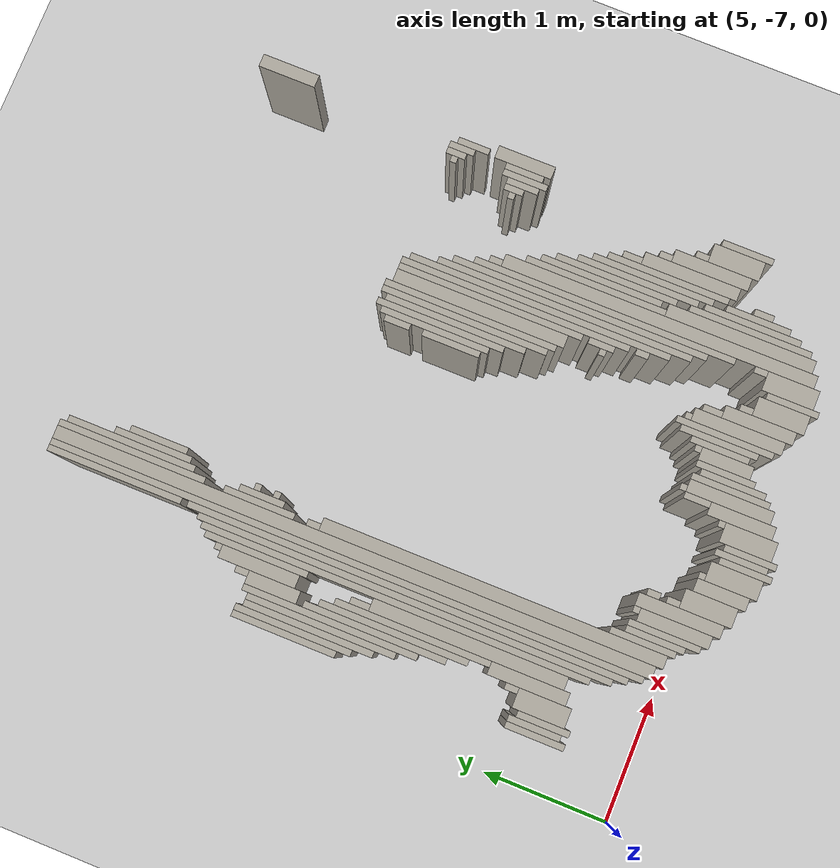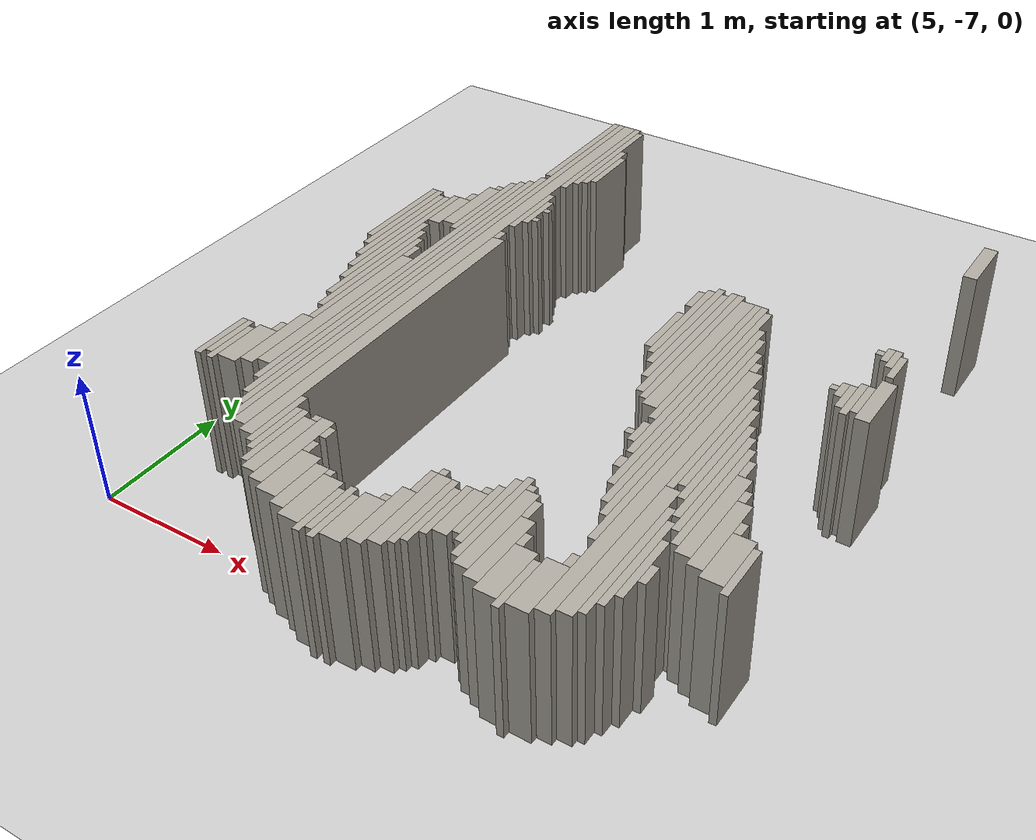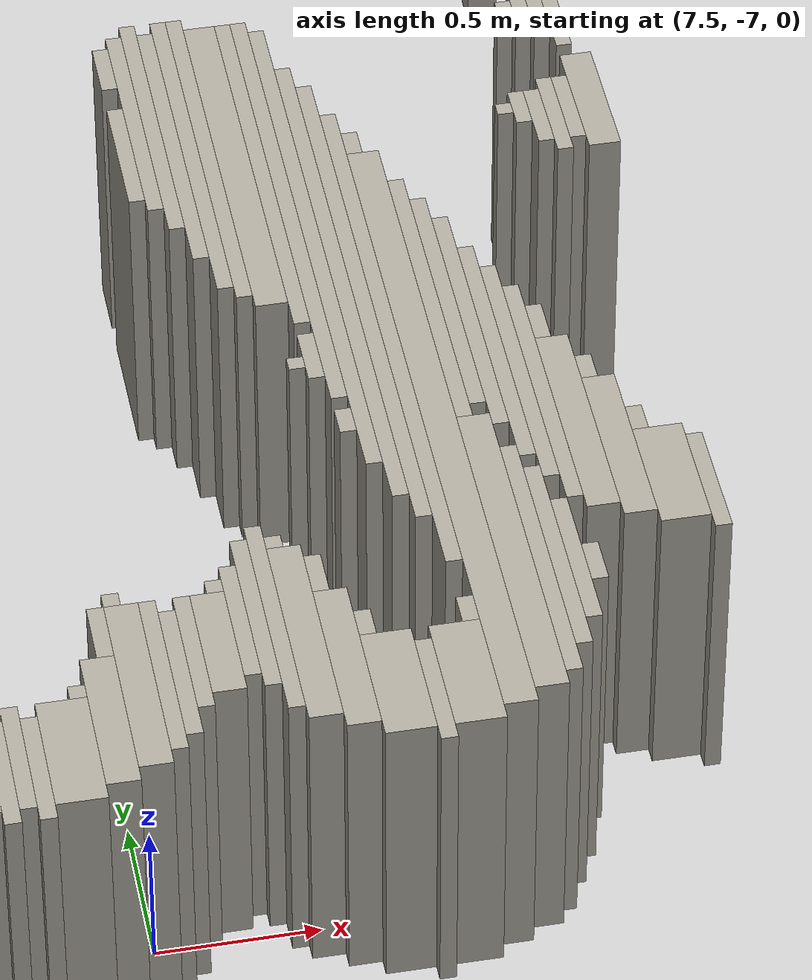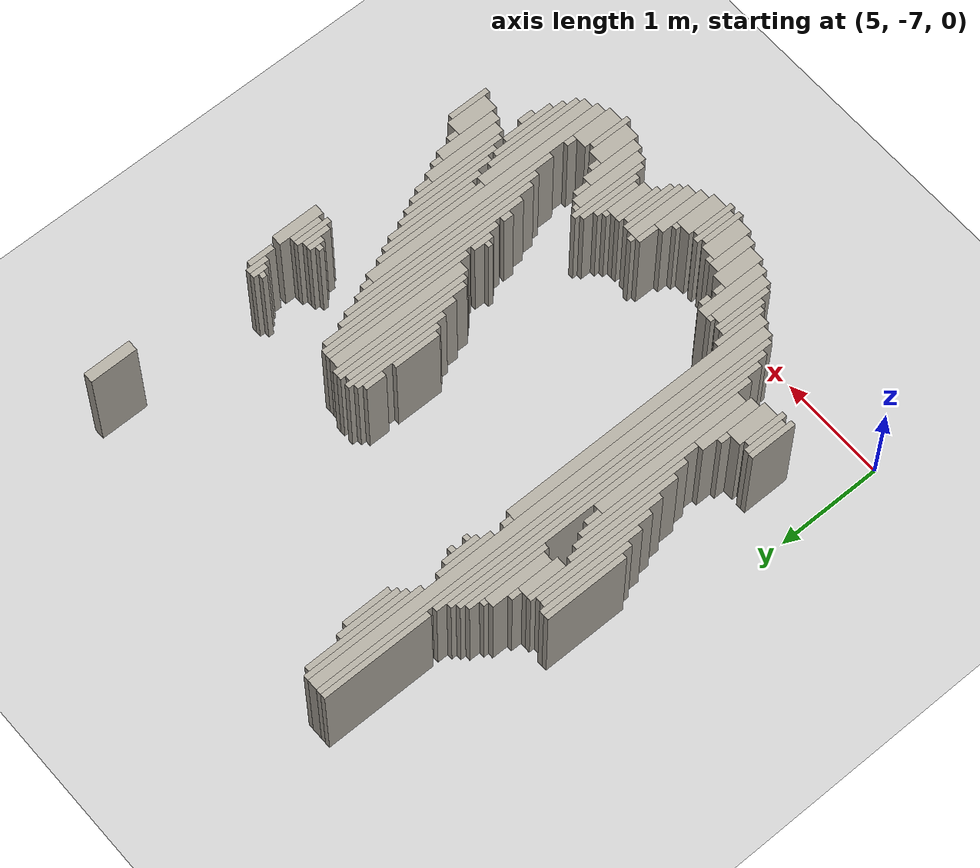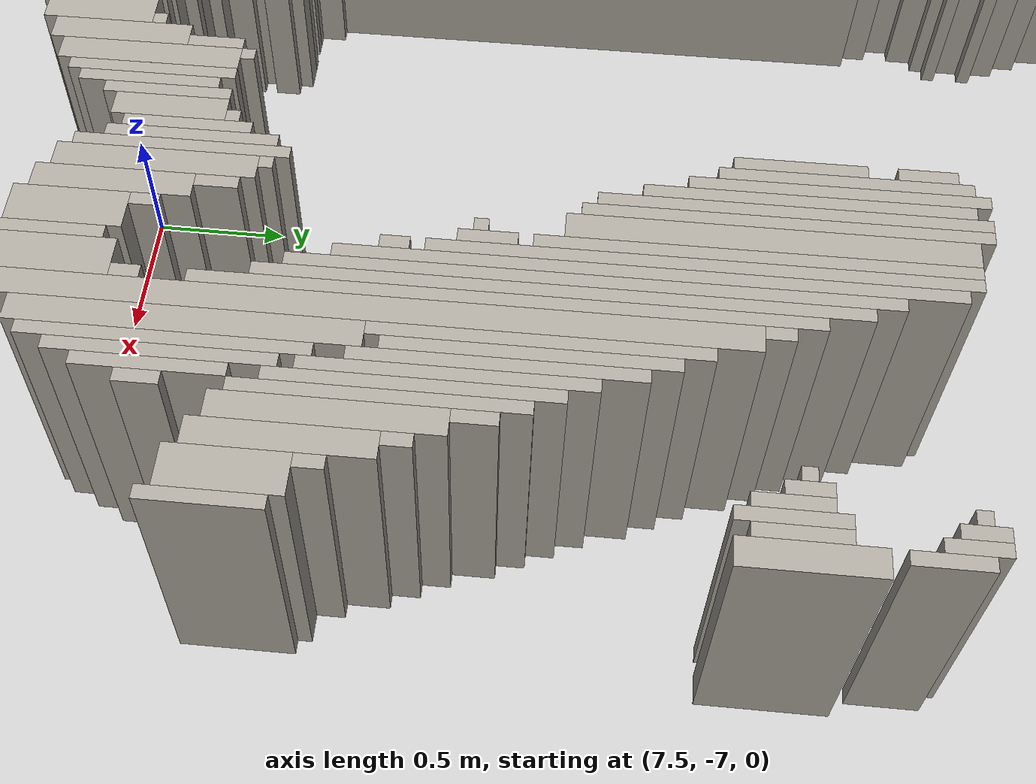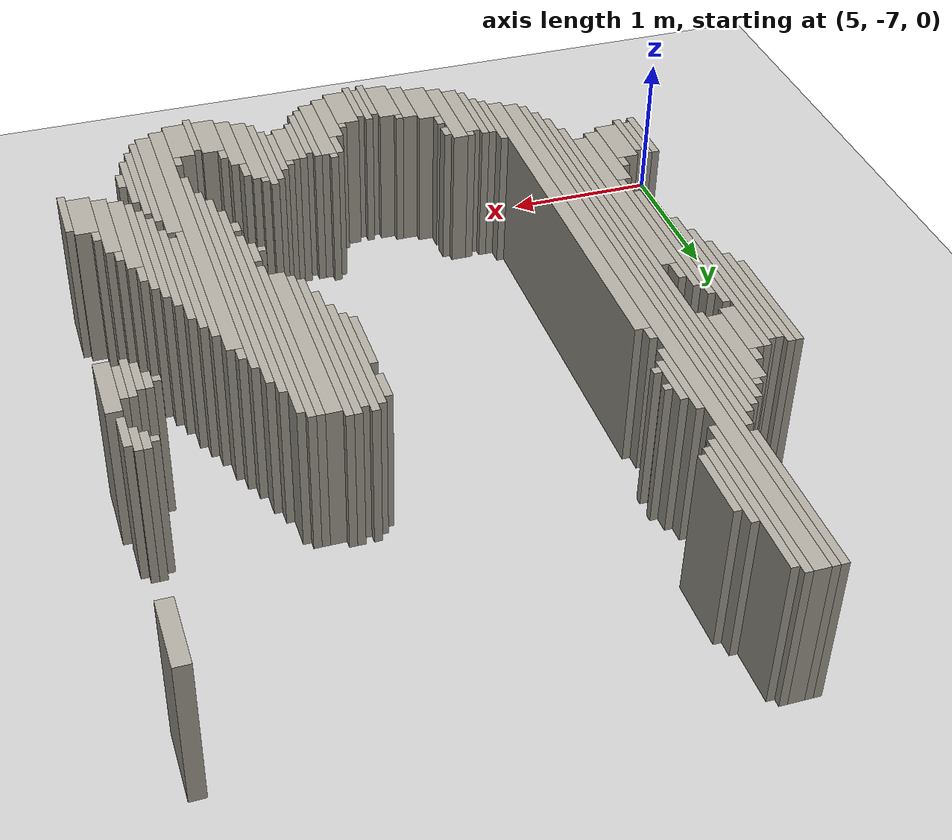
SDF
<sdf version="1.6">
 <world name="fr079_office">
  <include><uri>model://sun</uri></include>
  <include><uri>model://ground_plane</uri></include>
  <model name="fr079_office_walls">
   <static>true</static>
   <link name="w0004">
    <pose>7.077 -7.156 0.500 0 0 0</pose>
    <collision name="c"><geometry><box><size>0.050 0.400 1.000</size></box></geometry></collision>
    <visual name="v">
     <geometry><box><size>0.050 0.400 1.000</size></box></geometry>
     <material><ambient>0.68 0.66 0.62 1</ambient><diffuse>0.68 0.66 0.62 1</diffuse></material>
    </visual>
   </link>
   <link name="w0005">
    <pose>7.177 -7.156 0.500 0 0 0</pose>
    <collision name="c"><geometry><box><size>0.050 0.400 1.000</size></box></geometry></collision>
    <visual name="v">
     <geometry><box><size>0.050 0.400 1.000</size></box></geometry>
     <material><ambient>0.68 0.66 0.62 1</ambient><diffuse>0.68 0.66 0.62 1</diffuse></material>
    </visual>
   </link>
   <link name="w0018">
    <pose>6.977 -7.106 0.500 0 0 0</pose>
    <collision name="c"><geometry><box><size>0.150 0.400 1.000</size></box></geometry></collision>
    <visual name="v">
     <geometry><box><size>0.150 0.400 1.000</size></box></geometry>
     <material><ambient>0.68 0.66 0.62 1</ambient><diffuse>0.68 0.66 0.62 1</diffuse></material>
    </visual>
   </link>
   <link name="w0019">
    <pose>7.127 -7.106 0.500 0 0 0</pose>
    <collision name="c"><geometry><box><size>0.050 0.400 1.000</size></box></geometry></collision>
    <visual name="v">
     <geometry><box><size>0.050 0.400 1.000</size></box></geometry>
     <material><ambient>0.68 0.66 0.62 1</ambient><diffuse>0.68 0.66 0.62 1</diffuse></material>
    </visual>
   </link>
   <link name="w0020">
    <pose>7.277 -7.106 0.500 0 0 0</pose>
    <collision name="c"><geometry><box><size>0.150 0.400 1.000</size></box></geometry></collision>
    <visual name="v">
     <geometry><box><size>0.150 0.400 1.000</size></box></geometry>
     <material><ambient>0.68 0.66 0.62 1</ambient><diffuse>0.68 0.66 0.62 1</diffuse></material>
    </visual>
   </link>
   <link name="w0042">
    <pose>6.852 -7.056 0.500 0 0 0</pose>
    <collision name="c"><geometry><box><size>0.100 0.400 1.000</size></box></geometry></collision>
    <visual name="v">
     <geometry><box><size>0.100 0.400 1.000</size></box></geometry>
     <material><ambient>0.68 0.66 0.62 1</ambient><diffuse>0.68 0.66 0.62 1</diffuse></material>
    </visual>
   </link>
   <link name="w0043">
    <pose>7.402 -7.006 0.500 0 0 0</pose>
    <collision name="c"><geometry><box><size>0.100 0.500 1.000</size></box></geometry></collision>
    <visual name="v">
     <geometry><box><size>0.100 0.500 1.000</size></box></geometry>
     <material><ambient>0.68 0.66 0.62 1</ambient><diffuse>0.68 0.66 0.62 1</diffuse></material>
    </visual>
   </link>
   <link name="w0044">
    <pose>8.327 -7.056 0.500 0 0 0</pose>
    <collision name="c"><geometry><box><size>0.050 0.400 1.000</size></box></geometry></collision>
    <visual name="v">
     <geometry><box><size>0.050 0.400 1.000</size></box></geometry>
     <material><ambient>0.68 0.66 0.62 1</ambient><diffuse>0.68 0.66 0.62 1</diffuse></material>
    </visual>
   </link>
   <link name="w0066">
    <pose>6.727 -7.006 0.500 0 0 0</pose>
    <collision name="c"><geometry><box><size>0.150 0.400 1.000</size></box></geometry></collision>
    <visual name="v">
     <geometry><box><size>0.150 0.400 1.000</size></box></geometry>
     <material><ambient>0.68 0.66 0.62 1</ambient><diffuse>0.68 0.66 0.62 1</diffuse></material>
    </visual>
   </link>
   <link name="w0067">
    <pose>7.502 -6.881 0.500 0 0 0</pose>
    <collision name="c"><geometry><box><size>0.100 0.650 1.000</size></box></geometry></collision>
    <visual name="v">
     <geometry><box><size>0.100 0.650 1.000</size></box></geometry>
     <material><ambient>0.68 0.66 0.62 1</ambient><diffuse>0.68 0.66 0.62 1</diffuse></material>
    </visual>
   </link>
   <link name="w0068">
    <pose>8.227 -7.006 0.500 0 0 0</pose>
    <collision name="c"><geometry><box><size>0.150 0.400 1.000</size></box></geometry></collision>
    <visual name="v">
     <geometry><box><size>0.150 0.400 1.000</size></box></geometry>
     <material><ambient>0.68 0.66 0.62 1</ambient><diffuse>0.68 0.66 0.62 1</diffuse></material>
    </visual>
   </link>
   <link name="w0069">
    <pose>8.427 -7.006 0.500 0 0 0</pose>
    <collision name="c"><geometry><box><size>0.150 0.400 1.000</size></box></geometry></collision>
    <visual name="v">
     <geometry><box><size>0.150 0.400 1.000</size></box></geometry>
     <material><ambient>0.68 0.66 0.62 1</ambient><diffuse>0.68 0.66 0.62 1</diffuse></material>
    </visual>
   </link>
   <link name="w0092">
    <pose>6.602 -6.831 0.500 0 0 0</pose>
    <collision name="c"><geometry><box><size>0.100 0.650 1.000</size></box></geometry></collision>
    <visual name="v">
     <geometry><box><size>0.100 0.650 1.000</size></box></geometry>
     <material><ambient>0.68 0.66 0.62 1</ambient><diffuse>0.68 0.66 0.62 1</diffuse></material>
    </visual>
   </link>
   <link name="w0093">
    <pose>7.577 -6.856 0.500 0 0 0</pose>
    <collision name="c"><geometry><box><size>0.050 0.600 1.000</size></box></geometry></collision>
    <visual name="v">
     <geometry><box><size>0.050 0.600 1.000</size></box></geometry>
     <material><ambient>0.68 0.66 0.62 1</ambient><diffuse>0.68 0.66 0.62 1</diffuse></material>
    </visual>
   </link>
   <link name="w0094">
    <pose>8.102 -6.881 0.500 0 0 0</pose>
    <collision name="c"><geometry><box><size>0.100 0.550 1.000</size></box></geometry></collision>
    <visual name="v">
     <geometry><box><size>0.100 0.550 1.000</size></box></geometry>
     <material><ambient>0.68 0.66 0.62 1</ambient><diffuse>0.68 0.66 0.62 1</diffuse></material>
    </visual>
   </link>
   <link name="w0095">
    <pose>8.552 -5.931 0.500 0 0 0</pose>
    <collision name="c"><geometry><box><size>0.100 2.450 1.000</size></box></geometry></collision>
    <visual name="v">
     <geometry><box><size>0.100 2.450 1.000</size></box></geometry>
     <material><ambient>0.68 0.66 0.62 1</ambient><diffuse>0.68 0.66 0.62 1</diffuse></material>
    </visual>
   </link>
   <link name="w0115">
    <pose>6.502 -6.831 0.500 0 0 0</pose>
    <collision name="c"><geometry><box><size>0.100 0.550 1.000</size></box></geometry></collision>
    <visual name="v">
     <geometry><box><size>0.100 0.550 1.000</size></box></geometry>
     <material><ambient>0.68 0.66 0.62 1</ambient><diffuse>0.68 0.66 0.62 1</diffuse></material>
    </visual>
   </link>
   <link name="w0116">
    <pose>7.627 -6.856 0.500 0 0 0</pose>
    <collision name="c"><geometry><box><size>0.050 0.500 1.000</size></box></geometry></collision>
    <visual name="v">
     <geometry><box><size>0.050 0.500 1.000</size></box></geometry>
     <material><ambient>0.68 0.66 0.62 1</ambient><diffuse>0.68 0.66 0.62 1</diffuse></material>
    </visual>
   </link>
   <link name="w0117">
    <pose>8.002 -6.756 0.500 0 0 0</pose>
    <collision name="c"><geometry><box><size>0.100 0.700 1.000</size></box></geometry></collision>
    <visual name="v">
     <geometry><box><size>0.100 0.700 1.000</size></box></geometry>
     <material><ambient>0.68 0.66 0.62 1</ambient><diffuse>0.68 0.66 0.62 1</diffuse></material>
    </visual>
   </link>
   <link name="w0118">
    <pose>8.652 -6.531 0.500 0 0 0</pose>
    <collision name="c"><geometry><box><size>0.100 1.150 1.000</size></box></geometry></collision>
    <visual name="v">
     <geometry><box><size>0.100 1.150 1.000</size></box></geometry>
     <material><ambient>0.68 0.66 0.62 1</ambient><diffuse>0.68 0.66 0.62 1</diffuse></material>
    </visual>
   </link>
   <link name="w0131">
    <pose>6.427 -6.781 0.500 0 0 0</pose>
    <collision name="c"><geometry><box><size>0.050 0.550 1.000</size></box></geometry></collision>
    <visual name="v">
     <geometry><box><size>0.050 0.550 1.000</size></box></geometry>
     <material><ambient>0.68 0.66 0.62 1</ambient><diffuse>0.68 0.66 0.62 1</diffuse></material>
    </visual>
   </link>
   <link name="w0132">
    <pose>7.927 -6.681 0.500 0 0 0</pose>
    <collision name="c"><geometry><box><size>0.050 0.750 1.000</size></box></geometry></collision>
    <visual name="v">
     <geometry><box><size>0.050 0.750 1.000</size></box></geometry>
     <material><ambient>0.68 0.66 0.62 1</ambient><diffuse>0.68 0.66 0.62 1</diffuse></material>
    </visual>
   </link>
   <link name="w0133">
    <pose>8.727 -6.581 0.500 0 0 0</pose>
    <collision name="c"><geometry><box><size>0.050 0.950 1.000</size></box></geometry></collision>
    <visual name="v">
     <geometry><box><size>0.050 0.950 1.000</size></box></geometry>
     <material><ambient>0.68 0.66 0.62 1</ambient><diffuse>0.68 0.66 0.62 1</diffuse></material>
    </visual>
   </link>
   <link name="w0146">
    <pose>7.677 -6.781 0.500 0 0 0</pose>
    <collision name="c"><geometry><box><size>0.050 0.450 1.000</size></box></geometry></collision>
    <visual name="v">
     <geometry><box><size>0.050 0.450 1.000</size></box></geometry>
     <material><ambient>0.68 0.66 0.62 1</ambient><diffuse>0.68 0.66 0.62 1</diffuse></material>
    </visual>
   </link>
   <link name="w0156">
    <pose>6.377 -6.731 0.500 0 0 0</pose>
    <collision name="c"><geometry><box><size>0.050 0.450 1.000</size></box></geometry></collision>
    <visual name="v">
     <geometry><box><size>0.050 0.450 1.000</size></box></geometry>
     <material><ambient>0.68 0.66 0.62 1</ambient><diffuse>0.68 0.66 0.62 1</diffuse></material>
    </visual>
   </link>
   <link name="w0157">
    <pose>7.752 -6.756 0.500 0 0 0</pose>
    <collision name="c"><geometry><box><size>0.100 0.400 1.000</size></box></geometry></collision>
    <visual name="v">
     <geometry><box><size>0.100 0.400 1.000</size></box></geometry>
     <material><ambient>0.68 0.66 0.62 1</ambient><diffuse>0.68 0.66 0.62 1</diffuse></material>
    </visual>
   </link>
   <link name="w0158">
    <pose>7.877 -6.656 0.500 0 0 0</pose>
    <collision name="c"><geometry><box><size>0.050 0.600 1.000</size></box></geometry></collision>
    <visual name="v">
     <geometry><box><size>0.050 0.600 1.000</size></box></geometry>
     <material><ambient>0.68 0.66 0.62 1</ambient><diffuse>0.68 0.66 0.62 1</diffuse></material>
    </visual>
   </link>
   <link name="w0159">
    <pose>8.777 -6.581 0.500 0 0 0</pose>
    <collision name="c"><geometry><box><size>0.050 0.750 1.000</size></box></geometry></collision>
    <visual name="v">
     <geometry><box><size>0.050 0.750 1.000</size></box></geometry>
     <material><ambient>0.68 0.66 0.62 1</ambient><diffuse>0.68 0.66 0.62 1</diffuse></material>
    </visual>
   </link>
   <link name="w0169">
    <pose>6.327 -6.656 0.500 0 0 0</pose>
    <collision name="c"><geometry><box><size>0.050 0.500 1.000</size></box></geometry></collision>
    <visual name="v">
     <geometry><box><size>0.050 0.500 1.000</size></box></geometry>
     <material><ambient>0.68 0.66 0.62 1</ambient><diffuse>0.68 0.66 0.62 1</diffuse></material>
    </visual>
   </link>
   <link name="w0170">
    <pose>6.927 -6.881 0.500 0 0 0</pose>
    <collision name="c"><geometry><box><size>0.050 0.050 1.000</size></box></geometry></collision>
    <visual name="v">
     <geometry><box><size>0.050 0.050 1.000</size></box></geometry>
     <material><ambient>0.68 0.66 0.62 1</ambient><diffuse>0.68 0.66 0.62 1</diffuse></material>
    </visual>
   </link>
   <link name="w0171">
    <pose>7.327 -6.881 0.500 0 0 0</pose>
    <collision name="c"><geometry><box><size>0.050 0.050 1.000</size></box></geometry></collision>
    <visual name="v">
     <geometry><box><size>0.050 0.050 1.000</size></box></geometry>
     <material><ambient>0.68 0.66 0.62 1</ambient><diffuse>0.68 0.66 0.62 1</diffuse></material>
    </visual>
   </link>
   <link name="w0172">
    <pose>7.827 -6.681 0.500 0 0 0</pose>
    <collision name="c"><geometry><box><size>0.050 0.450 1.000</size></box></geometry></collision>
    <visual name="v">
     <geometry><box><size>0.050 0.450 1.000</size></box></geometry>
     <material><ambient>0.68 0.66 0.62 1</ambient><diffuse>0.68 0.66 0.62 1</diffuse></material>
    </visual>
   </link>
   <link name="w0191">
    <pose>6.252 -5.531 0.500 0 0 0</pose>
    <collision name="c"><geometry><box><size>0.100 2.650 1.000</size></box></geometry></collision>
    <visual name="v">
     <geometry><box><size>0.100 2.650 1.000</size></box></geometry>
     <material><ambient>0.68 0.66 0.62 1</ambient><diffuse>0.68 0.66 0.62 1</diffuse></material>
    </visual>
   </link>
   <link name="w0192">
    <pose>8.827 -6.606 0.500 0 0 0</pose>
    <collision name="c"><geometry><box><size>0.050 0.500 1.000</size></box></geometry></collision>
    <visual name="v">
     <geometry><box><size>0.050 0.500 1.000</size></box></geometry>
     <material><ambient>0.68 0.66 0.62 1</ambient><diffuse>0.68 0.66 0.62 1</diffuse></material>
    </visual>
   </link>
   <link name="w0205">
    <pose>6.152 -4.481 0.500 0 0 0</pose>
    <collision name="c"><geometry><box><size>0.100 4.650 1.000</size></box></geometry></collision>
    <visual name="v">
     <geometry><box><size>0.100 4.650 1.000</size></box></geometry>
     <material><ambient>0.68 0.66 0.62 1</ambient><diffuse>0.68 0.66 0.62 1</diffuse></material>
    </visual>
   </link>
   <link name="w0206">
    <pose>6.677 -6.756 0.500 0 0 0</pose>
    <collision name="c"><geometry><box><size>0.050 0.100 1.000</size></box></geometry></collision>
    <visual name="v">
     <geometry><box><size>0.050 0.100 1.000</size></box></geometry>
     <material><ambient>0.68 0.66 0.62 1</ambient><diffuse>0.68 0.66 0.62 1</diffuse></material>
    </visual>
   </link>
   <link name="w0207">
    <pose>8.177 -6.756 0.500 0 0 0</pose>
    <collision name="c"><geometry><box><size>0.050 0.100 1.000</size></box></geometry></collision>
    <visual name="v">
     <geometry><box><size>0.050 0.100 1.000</size></box></geometry>
     <material><ambient>0.68 0.66 0.62 1</ambient><diffuse>0.68 0.66 0.62 1</diffuse></material>
    </visual>
   </link>
   <link name="w0208">
    <pose>8.477 -6.756 0.500 0 0 0</pose>
    <collision name="c"><geometry><box><size>0.050 0.100 1.000</size></box></geometry></collision>
    <visual name="v">
     <geometry><box><size>0.050 0.100 1.000</size></box></geometry>
     <material><ambient>0.68 0.66 0.62 1</ambient><diffuse>0.68 0.66 0.62 1</diffuse></material>
    </visual>
   </link>
   <link name="w0225">
    <pose>6.077 -4.456 0.500 0 0 0</pose>
    <collision name="c"><geometry><box><size>0.050 4.600 1.000</size></box></geometry></collision>
    <visual name="v">
     <geometry><box><size>0.050 4.600 1.000</size></box></geometry>
     <material><ambient>0.68 0.66 0.62 1</ambient><diffuse>0.68 0.66 0.62 1</diffuse></material>
    </visual>
   </link>
   <link name="w0226">
    <pose>7.427 -6.656 0.500 0 0 0</pose>
    <collision name="c"><geometry><box><size>0.050 0.200 1.000</size></box></geometry></collision>
    <visual name="v">
     <geometry><box><size>0.050 0.200 1.000</size></box></geometry>
     <material><ambient>0.68 0.66 0.62 1</ambient><diffuse>0.68 0.66 0.62 1</diffuse></material>
    </visual>
   </link>
   <link name="w0240">
    <pose>8.877 -6.631 0.500 0 0 0</pose>
    <collision name="c"><geometry><box><size>0.050 0.150 1.000</size></box></geometry></collision>
    <visual name="v">
     <geometry><box><size>0.050 0.150 1.000</size></box></geometry>
     <material><ambient>0.68 0.66 0.62 1</ambient><diffuse>0.68 0.66 0.62 1</diffuse></material>
    </visual>
   </link>
   <link name="w0250">
    <pose>6.027 -4.956 0.500 0 0 0</pose>
    <collision name="c"><geometry><box><size>0.050 3.400 1.000</size></box></geometry></collision>
    <visual name="v">
     <geometry><box><size>0.050 3.400 1.000</size></box></geometry>
     <material><ambient>0.68 0.66 0.62 1</ambient><diffuse>0.68 0.66 0.62 1</diffuse></material>
    </visual>
   </link>
   <link name="w0251">
    <pose>6.677 -6.606 0.500 0 0 0</pose>
    <collision name="c"><geometry><box><size>0.050 0.100 1.000</size></box></geometry></collision>
    <visual name="v">
     <geometry><box><size>0.050 0.100 1.000</size></box></geometry>
     <material><ambient>0.68 0.66 0.62 1</ambient><diffuse>0.68 0.66 0.62 1</diffuse></material>
    </visual>
   </link>
   <link name="w0265">
    <pose>8.077 -6.531 0.500 0 0 0</pose>
    <collision name="c"><geometry><box><size>0.050 0.150 1.000</size></box></geometry></collision>
    <visual name="v">
     <geometry><box><size>0.050 0.150 1.000</size></box></geometry>
     <material><ambient>0.68 0.66 0.62 1</ambient><diffuse>0.68 0.66 0.62 1</diffuse></material>
    </visual>
   </link>
   <link name="w0276">
    <pose>5.977 -4.956 0.500 0 0 0</pose>
    <collision name="c"><geometry><box><size>0.050 3.200 1.000</size></box></geometry></collision>
    <visual name="v">
     <geometry><box><size>0.050 3.200 1.000</size></box></geometry>
     <material><ambient>0.68 0.66 0.62 1</ambient><diffuse>0.68 0.66 0.62 1</diffuse></material>
    </visual>
   </link>
   <link name="w0277">
    <pose>6.527 -6.531 0.500 0 0 0</pose>
    <collision name="c"><geometry><box><size>0.050 0.050 1.000</size></box></geometry></collision>
    <visual name="v">
     <geometry><box><size>0.050 0.050 1.000</size></box></geometry>
     <material><ambient>0.68 0.66 0.62 1</ambient><diffuse>0.68 0.66 0.62 1</diffuse></material>
    </visual>
   </link>
   <link name="w0278">
    <pose>7.477 -6.531 0.500 0 0 0</pose>
    <collision name="c"><geometry><box><size>0.050 0.050 1.000</size></box></geometry></collision>
    <visual name="v">
     <geometry><box><size>0.050 0.050 1.000</size></box></geometry>
     <material><ambient>0.68 0.66 0.62 1</ambient><diffuse>0.68 0.66 0.62 1</diffuse></material>
    </visual>
   </link>
   <link name="w0279">
    <pose>7.777 -6.531 0.500 0 0 0</pose>
    <collision name="c"><geometry><box><size>0.050 0.050 1.000</size></box></geometry></collision>
    <visual name="v">
     <geometry><box><size>0.050 0.050 1.000</size></box></geometry>
     <material><ambient>0.68 0.66 0.62 1</ambient><diffuse>0.68 0.66 0.62 1</diffuse></material>
    </visual>
   </link>
   <link name="w0280">
    <pose>8.477 -5.531 0.500 0 0 0</pose>
    <collision name="c"><geometry><box><size>0.050 2.050 1.000</size></box></geometry></collision>
    <visual name="v">
     <geometry><box><size>0.050 2.050 1.000</size></box></geometry>
     <material><ambient>0.68 0.66 0.62 1</ambient><diffuse>0.68 0.66 0.62 1</diffuse></material>
    </visual>
   </link>
   <link name="w0281">
    <pose>9.277 -6.356 0.500 0 0 0</pose>
    <collision name="c"><geometry><box><size>0.050 0.400 1.000</size></box></geometry></collision>
    <visual name="v">
     <geometry><box><size>0.050 0.400 1.000</size></box></geometry>
     <material><ambient>0.68 0.66 0.62 1</ambient><diffuse>0.68 0.66 0.62 1</diffuse></material>
    </visual>
   </link>
   <link name="w0291">
    <pose>9.177 -6.306 0.500 0 0 0</pose>
    <collision name="c"><geometry><box><size>0.150 0.400 1.000</size></box></geometry></collision>
    <visual name="v">
     <geometry><box><size>0.150 0.400 1.000</size></box></geometry>
     <material><ambient>0.68 0.66 0.62 1</ambient><diffuse>0.68 0.66 0.62 1</diffuse></material>
    </visual>
   </link>
   <link name="w0307">
    <pose>9.052 -6.156 0.500 0 0 0</pose>
    <collision name="c"><geometry><box><size>0.100 0.600 1.000</size></box></geometry></collision>
    <visual name="v">
     <geometry><box><size>0.100 0.600 1.000</size></box></geometry>
     <material><ambient>0.68 0.66 0.62 1</ambient><diffuse>0.68 0.66 0.62 1</diffuse></material>
    </visual>
   </link>
   <link name="w0326">
    <pose>5.427 -6.181 0.500 0 0 0</pose>
    <collision name="c"><geometry><box><size>0.050 0.450 1.000</size></box></geometry></collision>
    <visual name="v">
     <geometry><box><size>0.050 0.450 1.000</size></box></geometry>
     <material><ambient>0.68 0.66 0.62 1</ambient><diffuse>0.68 0.66 0.62 1</diffuse></material>
    </visual>
   </link>
   <link name="w0327">
    <pose>5.527 -6.206 0.500 0 0 0</pose>
    <collision name="c"><geometry><box><size>0.050 0.400 1.000</size></box></geometry></collision>
    <visual name="v">
     <geometry><box><size>0.050 0.400 1.000</size></box></geometry>
     <material><ambient>0.68 0.66 0.62 1</ambient><diffuse>0.68 0.66 0.62 1</diffuse></material>
    </visual>
   </link>
   <link name="w0328">
    <pose>5.927 -4.906 0.500 0 0 0</pose>
    <collision name="c"><geometry><box><size>0.050 3.000 1.000</size></box></geometry></collision>
    <visual name="v">
     <geometry><box><size>0.050 3.000 1.000</size></box></geometry>
     <material><ambient>0.68 0.66 0.62 1</ambient><diffuse>0.68 0.66 0.62 1</diffuse></material>
    </visual>
   </link>
   <link name="w0329">
    <pose>7.977 -6.381 0.500 0 0 0</pose>
    <collision name="c"><geometry><box><size>0.050 0.050 1.000</size></box></geometry></collision>
    <visual name="v">
     <geometry><box><size>0.050 0.050 1.000</size></box></geometry>
     <material><ambient>0.68 0.66 0.62 1</ambient><diffuse>0.68 0.66 0.62 1</diffuse></material>
    </visual>
   </link>
   <link name="w0330">
    <pose>8.952 -6.031 0.500 0 0 0</pose>
    <collision name="c"><geometry><box><size>0.100 0.750 1.000</size></box></geometry></collision>
    <visual name="v">
     <geometry><box><size>0.100 0.750 1.000</size></box></geometry>
     <material><ambient>0.68 0.66 0.62 1</ambient><diffuse>0.68 0.66 0.62 1</diffuse></material>
    </visual>
   </link>
   <link name="w0343">
    <pose>5.477 -6.156 0.500 0 0 0</pose>
    <collision name="c"><geometry><box><size>0.050 0.400 1.000</size></box></geometry></collision>
    <visual name="v">
     <geometry><box><size>0.050 0.400 1.000</size></box></geometry>
     <material><ambient>0.68 0.66 0.62 1</ambient><diffuse>0.68 0.66 0.62 1</diffuse></material>
    </visual>
   </link>
   <link name="w0344">
    <pose>5.627 -6.156 0.500 0 0 0</pose>
    <collision name="c"><geometry><box><size>0.150 0.400 1.000</size></box></geometry></collision>
    <visual name="v">
     <geometry><box><size>0.150 0.400 1.000</size></box></geometry>
     <material><ambient>0.68 0.66 0.62 1</ambient><diffuse>0.68 0.66 0.62 1</diffuse></material>
    </visual>
   </link>
   <link name="w0345">
    <pose>8.427 -5.356 0.500 0 0 0</pose>
    <collision name="c"><geometry><box><size>0.050 2.000 1.000</size></box></geometry></collision>
    <visual name="v">
     <geometry><box><size>0.050 2.000 1.000</size></box></geometry>
     <material><ambient>0.68 0.66 0.62 1</ambient><diffuse>0.68 0.66 0.62 1</diffuse></material>
    </visual>
   </link>
   <link name="w0346">
    <pose>8.877 -5.881 0.500 0 0 0</pose>
    <collision name="c"><geometry><box><size>0.050 0.950 1.000</size></box></geometry></collision>
    <visual name="v">
     <geometry><box><size>0.050 0.950 1.000</size></box></geometry>
     <material><ambient>0.68 0.66 0.62 1</ambient><diffuse>0.68 0.66 0.62 1</diffuse></material>
    </visual>
   </link>
   <link name="w0357">
    <pose>5.752 -6.006 0.500 0 0 0</pose>
    <collision name="c"><geometry><box><size>0.100 0.600 1.000</size></box></geometry></collision>
    <visual name="v">
     <geometry><box><size>0.100 0.600 1.000</size></box></geometry>
     <material><ambient>0.68 0.66 0.62 1</ambient><diffuse>0.68 0.66 0.62 1</diffuse></material>
    </visual>
   </link>
   <link name="w0370">
    <pose>5.852 -5.506 0.500 0 0 0</pose>
    <collision name="c"><geometry><box><size>0.100 1.500 1.000</size></box></geometry></collision>
    <visual name="v">
     <geometry><box><size>0.100 1.500 1.000</size></box></geometry>
     <material><ambient>0.68 0.66 0.62 1</ambient><diffuse>0.68 0.66 0.62 1</diffuse></material>
    </visual>
   </link>
   <link name="w0371">
    <pose>8.377 -5.256 0.500 0 0 0</pose>
    <collision name="c"><geometry><box><size>0.050 2.000 1.000</size></box></geometry></collision>
    <visual name="v">
     <geometry><box><size>0.050 2.000 1.000</size></box></geometry>
     <material><ambient>0.68 0.66 0.62 1</ambient><diffuse>0.68 0.66 0.62 1</diffuse></material>
    </visual>
   </link>
   <link name="w0372">
    <pose>8.827 -5.781 0.500 0 0 0</pose>
    <collision name="c"><geometry><box><size>0.050 0.950 1.000</size></box></geometry></collision>
    <visual name="v">
     <geometry><box><size>0.050 0.950 1.000</size></box></geometry>
     <material><ambient>0.68 0.66 0.62 1</ambient><diffuse>0.68 0.66 0.62 1</diffuse></material>
    </visual>
   </link>
   <link name="w0388">
    <pose>8.777 -5.681 0.500 0 0 0</pose>
    <collision name="c"><geometry><box><size>0.050 0.950 1.000</size></box></geometry></collision>
    <visual name="v">
     <geometry><box><size>0.050 0.950 1.000</size></box></geometry>
     <material><ambient>0.68 0.66 0.62 1</ambient><diffuse>0.68 0.66 0.62 1</diffuse></material>
    </visual>
   </link>
   <link name="w0400">
    <pose>8.327 -5.081 0.500 0 0 0</pose>
    <collision name="c"><geometry><box><size>0.050 2.050 1.000</size></box></geometry></collision>
    <visual name="v">
     <geometry><box><size>0.050 2.050 1.000</size></box></geometry>
     <material><ambient>0.68 0.66 0.62 1</ambient><diffuse>0.68 0.66 0.62 1</diffuse></material>
    </visual>
   </link>
   <link name="w0401">
    <pose>9.127 -6.056 0.500 0 0 0</pose>
    <collision name="c"><geometry><box><size>0.050 0.100 1.000</size></box></geometry></collision>
    <visual name="v">
     <geometry><box><size>0.050 0.100 1.000</size></box></geometry>
     <material><ambient>0.68 0.66 0.62 1</ambient><diffuse>0.68 0.66 0.62 1</diffuse></material>
    </visual>
   </link>
   <link name="w0426">
    <pose>8.727 -5.531 0.500 0 0 0</pose>
    <collision name="c"><geometry><box><size>0.050 0.950 1.000</size></box></geometry></collision>
    <visual name="v">
     <geometry><box><size>0.050 0.950 1.000</size></box></geometry>
     <material><ambient>0.68 0.66 0.62 1</ambient><diffuse>0.68 0.66 0.62 1</diffuse></material>
    </visual>
   </link>
   <link name="w0441">
    <pose>5.677 -5.906 0.500 0 0 0</pose>
    <collision name="c"><geometry><box><size>0.050 0.100 1.000</size></box></geometry></collision>
    <visual name="v">
     <geometry><box><size>0.050 0.100 1.000</size></box></geometry>
     <material><ambient>0.68 0.66 0.62 1</ambient><diffuse>0.68 0.66 0.62 1</diffuse></material>
    </visual>
   </link>
   <link name="w0442">
    <pose>8.277 -5.906 0.500 0 0 0</pose>
    <collision name="c"><geometry><box><size>0.050 0.100 1.000</size></box></geometry></collision>
    <visual name="v">
     <geometry><box><size>0.050 0.100 1.000</size></box></geometry>
     <material><ambient>0.68 0.66 0.62 1</ambient><diffuse>0.68 0.66 0.62 1</diffuse></material>
    </visual>
   </link>
   <link name="w0443">
    <pose>8.627 -5.406 0.500 0 0 0</pose>
    <collision name="c"><geometry><box><size>0.050 1.100 1.000</size></box></geometry></collision>
    <visual name="v">
     <geometry><box><size>0.050 1.100 1.000</size></box></geometry>
     <material><ambient>0.68 0.66 0.62 1</ambient><diffuse>0.68 0.66 0.62 1</diffuse></material>
    </visual>
   </link>
   <link name="w0458">
    <pose>8.677 -5.431 0.500 0 0 0</pose>
    <collision name="c"><geometry><box><size>0.050 0.950 1.000</size></box></geometry></collision>
    <visual name="v">
     <geometry><box><size>0.050 0.950 1.000</size></box></geometry>
     <material><ambient>0.68 0.66 0.62 1</ambient><diffuse>0.68 0.66 0.62 1</diffuse></material>
    </visual>
   </link>
   <link name="w0472">
    <pose>9.027 -5.806 0.500 0 0 0</pose>
    <collision name="c"><geometry><box><size>0.050 0.100 1.000</size></box></geometry></collision>
    <visual name="v">
     <geometry><box><size>0.050 0.100 1.000</size></box></geometry>
     <material><ambient>0.68 0.66 0.62 1</ambient><diffuse>0.68 0.66 0.62 1</diffuse></material>
    </visual>
   </link>
   <link name="w0487">
    <pose>8.277 -4.906 0.500 0 0 0</pose>
    <collision name="c"><geometry><box><size>0.050 1.800 1.000</size></box></geometry></collision>
    <visual name="v">
     <geometry><box><size>0.050 1.800 1.000</size></box></geometry>
     <material><ambient>0.68 0.66 0.62 1</ambient><diffuse>0.68 0.66 0.62 1</diffuse></material>
    </visual>
   </link>
   <link name="w0514">
    <pose>5.777 -5.106 0.500 0 0 0</pose>
    <collision name="c"><geometry><box><size>0.050 1.200 1.000</size></box></geometry></collision>
    <visual name="v">
     <geometry><box><size>0.050 1.200 1.000</size></box></geometry>
     <material><ambient>0.68 0.66 0.62 1</ambient><diffuse>0.68 0.66 0.62 1</diffuse></material>
    </visual>
   </link>
   <link name="w0515">
    <pose>8.227 -5.606 0.500 0 0 0</pose>
    <collision name="c"><geometry><box><size>0.050 0.200 1.000</size></box></geometry></collision>
    <visual name="v">
     <geometry><box><size>0.050 0.200 1.000</size></box></geometry>
     <material><ambient>0.68 0.66 0.62 1</ambient><diffuse>0.68 0.66 0.62 1</diffuse></material>
    </visual>
   </link>
   <link name="w0523">
    <pose>8.177 -5.631 0.500 0 0 0</pose>
    <collision name="c"><geometry><box><size>0.050 0.050 1.000</size></box></geometry></collision>
    <visual name="v">
     <geometry><box><size>0.050 0.050 1.000</size></box></geometry>
     <material><ambient>0.68 0.66 0.62 1</ambient><diffuse>0.68 0.66 0.62 1</diffuse></material>
    </visual>
   </link>
   <link name="w0524">
    <pose>8.927 -5.581 0.500 0 0 0</pose>
    <collision name="c"><geometry><box><size>0.050 0.150 1.000</size></box></geometry></collision>
    <visual name="v">
     <geometry><box><size>0.050 0.150 1.000</size></box></geometry>
     <material><ambient>0.68 0.66 0.62 1</ambient><diffuse>0.68 0.66 0.62 1</diffuse></material>
    </visual>
   </link>
   <link name="w0548">
    <pose>5.727 -4.981 0.500 0 0 0</pose>
    <collision name="c"><geometry><box><size>0.050 1.150 1.000</size></box></geometry></collision>
    <visual name="v">
     <geometry><box><size>0.050 1.150 1.000</size></box></geometry>
     <material><ambient>0.68 0.66 0.62 1</ambient><diffuse>0.68 0.66 0.62 1</diffuse></material>
    </visual>
   </link>
   <link name="w0568">
    <pose>8.227 -4.731 0.500 0 0 0</pose>
    <collision name="c"><geometry><box><size>0.050 1.450 1.000</size></box></geometry></collision>
    <visual name="v">
     <geometry><box><size>0.050 1.450 1.000</size></box></geometry>
     <material><ambient>0.68 0.66 0.62 1</ambient><diffuse>0.68 0.66 0.62 1</diffuse></material>
    </visual>
   </link>
   <link name="w0581">
    <pose>5.677 -4.856 0.500 0 0 0</pose>
    <collision name="c"><geometry><box><size>0.050 1.100 1.000</size></box></geometry></collision>
    <visual name="v">
     <geometry><box><size>0.050 1.100 1.000</size></box></geometry>
     <material><ambient>0.68 0.66 0.62 1</ambient><diffuse>0.68 0.66 0.62 1</diffuse></material>
    </visual>
   </link>
   <link name="w0593">
    <pose>8.152 -4.681 0.500 0 0 0</pose>
    <collision name="c"><geometry><box><size>0.100 1.350 1.000</size></box></geometry></collision>
    <visual name="v">
     <geometry><box><size>0.100 1.350 1.000</size></box></geometry>
     <material><ambient>0.68 0.66 0.62 1</ambient><diffuse>0.68 0.66 0.62 1</diffuse></material>
    </visual>
   </link>
   <link name="w0608">
    <pose>8.077 -4.631 0.500 0 0 0</pose>
    <collision name="c"><geometry><box><size>0.050 1.350 1.000</size></box></geometry></collision>
    <visual name="v">
     <geometry><box><size>0.050 1.350 1.000</size></box></geometry>
     <material><ambient>0.68 0.66 0.62 1</ambient><diffuse>0.68 0.66 0.62 1</diffuse></material>
    </visual>
   </link>
   <link name="w0623">
    <pose>8.027 -4.606 0.500 0 0 0</pose>
    <collision name="c"><geometry><box><size>0.050 1.300 1.000</size></box></geometry></collision>
    <visual name="v">
     <geometry><box><size>0.050 1.300 1.000</size></box></geometry>
     <material><ambient>0.68 0.66 0.62 1</ambient><diffuse>0.68 0.66 0.62 1</diffuse></material>
    </visual>
   </link>
   <link name="w0641">
    <pose>5.627 -4.531 0.500 0 0 0</pose>
    <collision name="c"><geometry><box><size>0.050 1.350 1.000</size></box></geometry></collision>
    <visual name="v">
     <geometry><box><size>0.050 1.350 1.000</size></box></geometry>
     <material><ambient>0.68 0.66 0.62 1</ambient><diffuse>0.68 0.66 0.62 1</diffuse></material>
    </visual>
   </link>
   <link name="w0665">
    <pose>7.977 -4.556 0.500 0 0 0</pose>
    <collision name="c"><geometry><box><size>0.050 1.100 1.000</size></box></geometry></collision>
    <visual name="v">
     <geometry><box><size>0.050 1.100 1.000</size></box></geometry>
     <material><ambient>0.68 0.66 0.62 1</ambient><diffuse>0.68 0.66 0.62 1</diffuse></material>
    </visual>
   </link>
   <link name="w0677">
    <pose>5.577 -4.481 0.500 0 0 0</pose>
    <collision name="c"><geometry><box><size>0.050 1.150 1.000</size></box></geometry></collision>
    <visual name="v">
     <geometry><box><size>0.050 1.150 1.000</size></box></geometry>
     <material><ambient>0.68 0.66 0.62 1</ambient><diffuse>0.68 0.66 0.62 1</diffuse></material>
    </visual>
   </link>
   <link name="w0698">
    <pose>7.927 -4.456 0.500 0 0 0</pose>
    <collision name="c"><geometry><box><size>0.050 1.000 1.000</size></box></geometry></collision>
    <visual name="v">
     <geometry><box><size>0.050 1.000 1.000</size></box></geometry>
     <material><ambient>0.68 0.66 0.62 1</ambient><diffuse>0.68 0.66 0.62 1</diffuse></material>
    </visual>
   </link>
   <link name="w0707">
    <pose>5.527 -4.406 0.500 0 0 0</pose>
    <collision name="c"><geometry><box><size>0.050 1.000 1.000</size></box></geometry></collision>
    <visual name="v">
     <geometry><box><size>0.050 1.000 1.000</size></box></geometry>
     <material><ambient>0.68 0.66 0.62 1</ambient><diffuse>0.68 0.66 0.62 1</diffuse></material>
    </visual>
   </link>
   <link name="w0721">
    <pose>7.877 -4.431 0.500 0 0 0</pose>
    <collision name="c"><geometry><box><size>0.050 0.850 1.000</size></box></geometry></collision>
    <visual name="v">
     <geometry><box><size>0.050 0.850 1.000</size></box></geometry>
     <material><ambient>0.68 0.66 0.62 1</ambient><diffuse>0.68 0.66 0.62 1</diffuse></material>
    </visual>
   </link>
   <link name="w0730">
    <pose>7.827 -4.581 0.500 0 0 0</pose>
    <collision name="c"><geometry><box><size>0.050 0.450 1.000</size></box></geometry></collision>
    <visual name="v">
     <geometry><box><size>0.050 0.450 1.000</size></box></geometry>
     <material><ambient>0.68 0.66 0.62 1</ambient><diffuse>0.68 0.66 0.62 1</diffuse></material>
    </visual>
   </link>
   <link name="w0731">
    <pose>9.177 -4.631 0.500 0 0 0</pose>
    <collision name="c"><geometry><box><size>0.050 0.350 1.000</size></box></geometry></collision>
    <visual name="v">
     <geometry><box><size>0.050 0.350 1.000</size></box></geometry>
     <material><ambient>0.68 0.66 0.62 1</ambient><diffuse>0.68 0.66 0.62 1</diffuse></material>
    </visual>
   </link>
   <link name="w0732">
    <pose>9.302 -4.581 0.500 0 0 0</pose>
    <collision name="c"><geometry><box><size>0.100 0.450 1.000</size></box></geometry></collision>
    <visual name="v">
     <geometry><box><size>0.100 0.450 1.000</size></box></geometry>
     <material><ambient>0.68 0.66 0.62 1</ambient><diffuse>0.68 0.66 0.62 1</diffuse></material>
    </visual>
   </link>
   <link name="w0745">
    <pose>5.477 -4.306 0.500 0 0 0</pose>
    <collision name="c"><geometry><box><size>0.050 0.900 1.000</size></box></geometry></collision>
    <visual name="v">
     <geometry><box><size>0.050 0.900 1.000</size></box></geometry>
     <material><ambient>0.68 0.66 0.62 1</ambient><diffuse>0.68 0.66 0.62 1</diffuse></material>
    </visual>
   </link>
   <link name="w0746">
    <pose>5.827 -4.681 0.500 0 0 0</pose>
    <collision name="c"><geometry><box><size>0.050 0.150 1.000</size></box></geometry></collision>
    <visual name="v">
     <geometry><box><size>0.050 0.150 1.000</size></box></geometry>
     <material><ambient>0.68 0.66 0.62 1</ambient><diffuse>0.68 0.66 0.62 1</diffuse></material>
    </visual>
   </link>
   <link name="w0747">
    <pose>9.127 -4.631 0.500 0 0 0</pose>
    <collision name="c"><geometry><box><size>0.050 0.250 1.000</size></box></geometry></collision>
    <visual name="v">
     <geometry><box><size>0.050 0.250 1.000</size></box></geometry>
     <material><ambient>0.68 0.66 0.62 1</ambient><diffuse>0.68 0.66 0.62 1</diffuse></material>
    </visual>
   </link>
   <link name="w0748">
    <pose>9.227 -4.606 0.500 0 0 0</pose>
    <collision name="c"><geometry><box><size>0.050 0.300 1.000</size></box></geometry></collision>
    <visual name="v">
     <geometry><box><size>0.050 0.300 1.000</size></box></geometry>
     <material><ambient>0.68 0.66 0.62 1</ambient><diffuse>0.68 0.66 0.62 1</diffuse></material>
    </visual>
   </link>
   <link name="w0760">
    <pose>8.527 -4.656 0.500 0 0 0</pose>
    <collision name="c"><geometry><box><size>0.050 0.100 1.000</size></box></geometry></collision>
    <visual name="v">
     <geometry><box><size>0.050 0.100 1.000</size></box></geometry>
     <material><ambient>0.68 0.66 0.62 1</ambient><diffuse>0.68 0.66 0.62 1</diffuse></material>
    </visual>
   </link>
   <link name="w0775">
    <pose>5.427 -4.256 0.500 0 0 0</pose>
    <collision name="c"><geometry><box><size>0.050 0.800 1.000</size></box></geometry></collision>
    <visual name="v">
     <geometry><box><size>0.050 0.800 1.000</size></box></geometry>
     <material><ambient>0.68 0.66 0.62 1</ambient><diffuse>0.68 0.66 0.62 1</diffuse></material>
    </visual>
   </link>
   <link name="w0776">
    <pose>9.077 -4.581 0.500 0 0 0</pose>
    <collision name="c"><geometry><box><size>0.050 0.150 1.000</size></box></geometry></collision>
    <visual name="v">
     <geometry><box><size>0.050 0.150 1.000</size></box></geometry>
     <material><ambient>0.68 0.66 0.62 1</ambient><diffuse>0.68 0.66 0.62 1</diffuse></material>
    </visual>
   </link>
   <link name="w0789">
    <pose>9.027 -4.581 0.500 0 0 0</pose>
    <collision name="c"><geometry><box><size>0.050 0.050 1.000</size></box></geometry></collision>
    <visual name="v">
     <geometry><box><size>0.050 0.050 1.000</size></box></geometry>
     <material><ambient>0.68 0.66 0.62 1</ambient><diffuse>0.68 0.66 0.62 1</diffuse></material>
    </visual>
   </link>
   <link name="w0881">
    <pose>9.277 -4.181 0.500 0 0 0</pose>
    <collision name="c"><geometry><box><size>0.050 0.250 1.000</size></box></geometry></collision>
    <visual name="v">
     <geometry><box><size>0.050 0.250 1.000</size></box></geometry>
     <material><ambient>0.68 0.66 0.62 1</ambient><diffuse>0.68 0.66 0.62 1</diffuse></material>
    </visual>
   </link>
   <link name="w0895">
    <pose>5.702 -4.056 0.500 0 0 0</pose>
    <collision name="c"><geometry><box><size>0.100 0.400 1.000</size></box></geometry></collision>
    <visual name="v">
     <geometry><box><size>0.100 0.400 1.000</size></box></geometry>
     <material><ambient>0.68 0.66 0.62 1</ambient><diffuse>0.68 0.66 0.62 1</diffuse></material>
    </visual>
   </link>
   <link name="w0896">
    <pose>5.877 -3.856 0.500 0 0 0</pose>
    <collision name="c"><geometry><box><size>0.050 0.800 1.000</size></box></geometry></collision>
    <visual name="v">
     <geometry><box><size>0.050 0.800 1.000</size></box></geometry>
     <material><ambient>0.68 0.66 0.62 1</ambient><diffuse>0.68 0.66 0.62 1</diffuse></material>
    </visual>
   </link>
   <link name="w0897">
    <pose>7.827 -4.156 0.500 0 0 0</pose>
    <collision name="c"><geometry><box><size>0.050 0.200 1.000</size></box></geometry></collision>
    <visual name="v">
     <geometry><box><size>0.050 0.200 1.000</size></box></geometry>
     <material><ambient>0.68 0.66 0.62 1</ambient><diffuse>0.68 0.66 0.62 1</diffuse></material>
    </visual>
   </link>
   <link name="w0914">
    <pose>5.802 -3.906 0.500 0 0 0</pose>
    <collision name="c"><geometry><box><size>0.100 0.600 1.000</size></box></geometry></collision>
    <visual name="v">
     <geometry><box><size>0.100 0.600 1.000</size></box></geometry>
     <material><ambient>0.68 0.66 0.62 1</ambient><diffuse>0.68 0.66 0.62 1</diffuse></material>
    </visual>
   </link>
   <link name="w0915">
    <pose>6.227 -4.156 0.500 0 0 0</pose>
    <collision name="c"><geometry><box><size>0.050 0.100 1.000</size></box></geometry></collision>
    <visual name="v">
     <geometry><box><size>0.050 0.100 1.000</size></box></geometry>
     <material><ambient>0.68 0.66 0.62 1</ambient><diffuse>0.68 0.66 0.62 1</diffuse></material>
    </visual>
   </link>
   <link name="w0916">
    <pose>9.227 -4.106 0.500 0 0 0</pose>
    <collision name="c"><geometry><box><size>0.050 0.200 1.000</size></box></geometry></collision>
    <visual name="v">
     <geometry><box><size>0.050 0.200 1.000</size></box></geometry>
     <material><ambient>0.68 0.66 0.62 1</ambient><diffuse>0.68 0.66 0.62 1</diffuse></material>
    </visual>
   </link>
   <link name="w0934">
    <pose>9.177 -4.081 0.500 0 0 0</pose>
    <collision name="c"><geometry><box><size>0.050 0.150 1.000</size></box></geometry></collision>
    <visual name="v">
     <geometry><box><size>0.050 0.150 1.000</size></box></geometry>
     <material><ambient>0.68 0.66 0.62 1</ambient><diffuse>0.68 0.66 0.62 1</diffuse></material>
    </visual>
   </link>
   <link name="w0948">
    <pose>9.127 -4.081 0.500 0 0 0</pose>
    <collision name="c"><geometry><box><size>0.050 0.050 1.000</size></box></geometry></collision>
    <visual name="v">
     <geometry><box><size>0.050 0.050 1.000</size></box></geometry>
     <material><ambient>0.68 0.66 0.62 1</ambient><diffuse>0.68 0.66 0.62 1</diffuse></material>
    </visual>
   </link>
   <link name="w0972">
    <pose>6.227 -3.731 0.500 0 0 0</pose>
    <collision name="c"><geometry><box><size>0.050 0.550 1.000</size></box></geometry></collision>
    <visual name="v">
     <geometry><box><size>0.050 0.550 1.000</size></box></geometry>
     <material><ambient>0.68 0.66 0.62 1</ambient><diffuse>0.68 0.66 0.62 1</diffuse></material>
    </visual>
   </link>
   <link name="w1000">
    <pose>6.277 -3.731 0.500 0 0 0</pose>
    <collision name="c"><geometry><box><size>0.050 0.350 1.000</size></box></geometry></collision>
    <visual name="v">
     <geometry><box><size>0.050 0.350 1.000</size></box></geometry>
     <material><ambient>0.68 0.66 0.62 1</ambient><diffuse>0.68 0.66 0.62 1</diffuse></material>
    </visual>
   </link>
   <link name="w1010">
    <pose>5.727 -3.806 0.500 0 0 0</pose>
    <collision name="c"><geometry><box><size>0.050 0.100 1.000</size></box></geometry></collision>
    <visual name="v">
     <geometry><box><size>0.050 0.100 1.000</size></box></geometry>
     <material><ambient>0.68 0.66 0.62 1</ambient><diffuse>0.68 0.66 0.62 1</diffuse></material>
    </visual>
   </link>
   <link name="w1011">
    <pose>6.327 -3.831 0.500 0 0 0</pose>
    <collision name="c"><geometry><box><size>0.050 0.050 1.000</size></box></geometry></collision>
    <visual name="v">
     <geometry><box><size>0.050 0.050 1.000</size></box></geometry>
     <material><ambient>0.68 0.66 0.62 1</ambient><diffuse>0.68 0.66 0.62 1</diffuse></material>
    </visual>
   </link>
   <link name="w1050">
    <pose>6.327 -3.681 0.500 0 0 0</pose>
    <collision name="c"><geometry><box><size>0.050 0.050 1.000</size></box></geometry></collision>
    <visual name="v">
     <geometry><box><size>0.050 0.050 1.000</size></box></geometry>
     <material><ambient>0.68 0.66 0.62 1</ambient><diffuse>0.68 0.66 0.62 1</diffuse></material>
    </visual>
   </link>
   <link name="w1069">
    <pose>5.827 -3.581 0.500 0 0 0</pose>
    <collision name="c"><geometry><box><size>0.050 0.050 1.000</size></box></geometry></collision>
    <visual name="v">
     <geometry><box><size>0.050 0.050 1.000</size></box></geometry>
     <material><ambient>0.68 0.66 0.62 1</ambient><diffuse>0.68 0.66 0.62 1</diffuse></material>
    </visual>
   </link>
   <link name="w1113">
    <pose>6.227 -2.731 0.500 0 0 0</pose>
    <collision name="c"><geometry><box><size>0.050 1.150 1.000</size></box></geometry></collision>
    <visual name="v">
     <geometry><box><size>0.050 1.150 1.000</size></box></geometry>
     <material><ambient>0.68 0.66 0.62 1</ambient><diffuse>0.68 0.66 0.62 1</diffuse></material>
    </visual>
   </link>
   <link name="w1120">
    <pose>6.027 -2.681 0.500 0 0 0</pose>
    <collision name="c"><geometry><box><size>0.050 1.050 1.000</size></box></geometry></collision>
    <visual name="v">
     <geometry><box><size>0.050 1.050 1.000</size></box></geometry>
     <material><ambient>0.68 0.66 0.62 1</ambient><diffuse>0.68 0.66 0.62 1</diffuse></material>
    </visual>
   </link>
   <link name="w1121">
    <pose>6.277 -2.706 0.500 0 0 0</pose>
    <collision name="c"><geometry><box><size>0.050 1.000 1.000</size></box></geometry></collision>
    <visual name="v">
     <geometry><box><size>0.050 1.000 1.000</size></box></geometry>
     <material><ambient>0.68 0.66 0.62 1</ambient><diffuse>0.68 0.66 0.62 1</diffuse></material>
    </visual>
   </link>
   <link name="w1126">
    <pose>6.327 -2.856 0.500 0 0 0</pose>
    <collision name="c"><geometry><box><size>0.050 0.600 1.000</size></box></geometry></collision>
    <visual name="v">
     <geometry><box><size>0.050 0.600 1.000</size></box></geometry>
     <material><ambient>0.68 0.66 0.62 1</ambient><diffuse>0.68 0.66 0.62 1</diffuse></material>
    </visual>
   </link>
   <link name="w1135">
    <pose>6.377 -2.881 0.500 0 0 0</pose>
    <collision name="c"><geometry><box><size>0.050 0.450 1.000</size></box></geometry></collision>
    <visual name="v">
     <geometry><box><size>0.050 0.450 1.000</size></box></geometry>
     <material><ambient>0.68 0.66 0.62 1</ambient><diffuse>0.68 0.66 0.62 1</diffuse></material>
    </visual>
   </link>
   <link name="w1177">
    <pose>9.302 -2.681 0.500 0 0 0</pose>
    <collision name="c"><geometry><box><size>0.100 0.450 1.000</size></box></geometry></collision>
    <visual name="v">
     <geometry><box><size>0.100 0.450 1.000</size></box></geometry>
     <material><ambient>0.68 0.66 0.62 1</ambient><diffuse>0.68 0.66 0.62 1</diffuse></material>
    </visual>
   </link>
  </model>
 </world>
</sdf>
